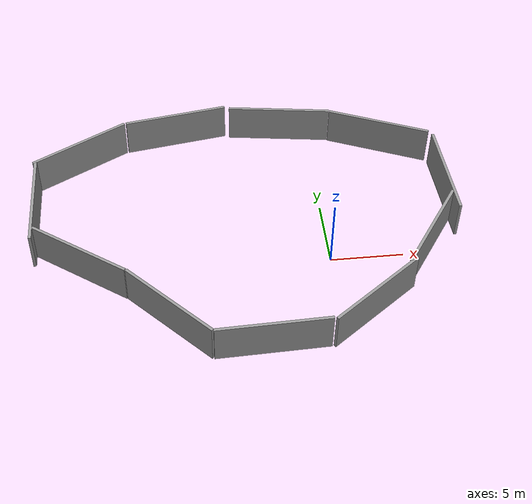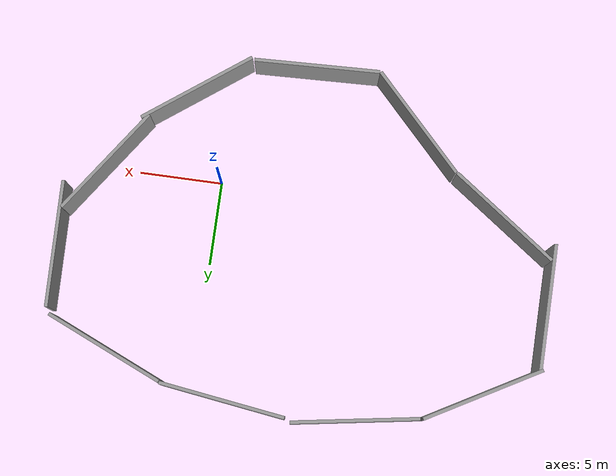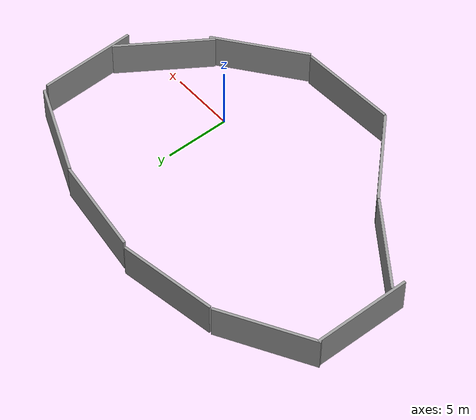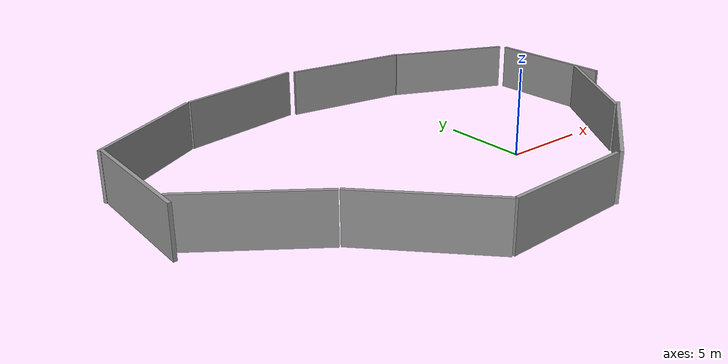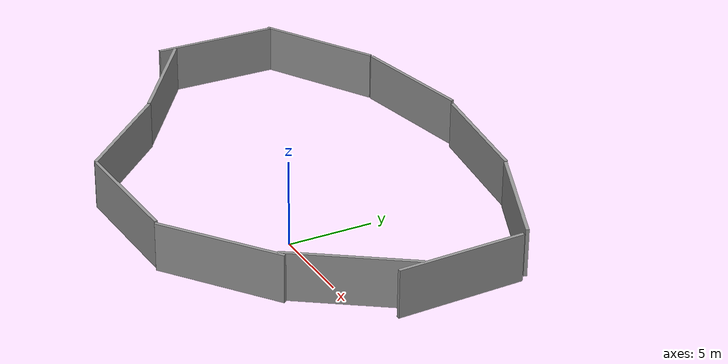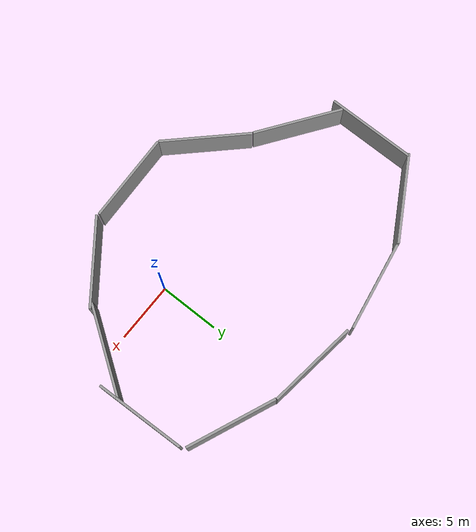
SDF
<sdf version="1.6">
 <world name="default">
  <light name="sun" type="directional">
   <pose>0 0 10 0 -0 0</pose>
   <diffuse>0.8 0.8 0.8 1</diffuse>
   <specular>0.2 0.2 0.2 1</specular>
   <attenuation>
    <range>1000</range>
    <constant>0.9</constant>
    <linear>0.01</linear>
    <quadratic>0.001</quadratic>
   </attenuation>
   <direction>-0.5 0.1 -0.9</direction>
  </light>
  <gravity>0 0 -9.8</gravity>
  <magnetic_field>6e-06 2.3e-05 -4.2e-05</magnetic_field>
  <atmosphere type="adiabatic"/>
  <physics name="default_physics" default="0" type="ode">
   <max_step_size>0.001</max_step_size>
   <real_time_factor>1</real_time_factor>
   <real_time_update_rate>1000</real_time_update_rate>
  </physics>
  <scene><ambient>0.4 0.4 0.4 1</ambient><background>0.7 0.7 0.7 1</background><shadows>1</shadows></scene>
  <audio><device>default</device></audio>
  <spherical_coordinates>
   <surface_model>EARTH_WGS84</surface_model>
   <latitude_deg>0</latitude_deg>
   <longitude_deg>0</longitude_deg>
   <elevation>0</elevation>
   <heading_deg>0</heading_deg>
  </spherical_coordinates>
  <model name="grey_wall">
   <static>1</static>
   <link name="link">
    <pose>0 0 1.4 0 -0 0</pose>
    <collision name="collision"><geometry><box><size>7.5 0.2 2.8</size></box></geometry></collision>
    <visual name="visual">
     <cast_shadows>0</cast_shadows>
     <geometry><box><size>7.5 0.2 2.8</size></box></geometry>
     <material>
      <script>
       <uri>model://grey_wall/materials/scripts</uri>
       <uri>model://grey_wall/materials/textures</uri>
       <name>vrc/grey_wall</name>
      </script>
     </material>
    </visual>
   </link>
   <pose>5.13458 10.9235 0 0 0 -0.408397</pose>
  </model>
  <model name="grey_wall_clone">
   <static>1</static>
   <link name="link">
    <pose>0 0 1.4 0 -0 0</pose>
    <collision name="collision"><geometry><box><size>7.5 0.2 2.8</size></box></geometry></collision>
    <visual name="visual">
     <cast_shadows>0</cast_shadows>
     <geometry><box><size>7.5 0.2 2.8</size></box></geometry>
     <material>
      <script>
       <uri>model://grey_wall/materials/scripts</uri>
       <uri>model://grey_wall/materials/textures</uri>
       <name>vrc/grey_wall</name>
      </script>
     </material>
    </visual>
   </link>
   <pose>8.91236 5.30749 0 0 -0 1.59951</pose>
  </model>
  <model name="grey_wall_clone_0">
   <static>1</static>
   <link name="link">
    <pose>0 0 1.4 0 -0 0</pose>
    <collision name="collision"><geometry><box><size>7.5 0.2 2.8</size></box></geometry></collision>
    <visual name="visual">
     <cast_shadows>0</cast_shadows>
     <geometry><box><size>7.5 0.2 2.8</size></box></geometry>
     <material>
      <script>
       <uri>model://grey_wall/materials/scripts</uri>
       <uri>model://grey_wall/materials/textures</uri>
       <name>vrc/grey_wall</name>
      </script>
     </material>
    </visual>
   </link>
   <pose>-2.04713 12.9833 0 0 0 -0.136142</pose>
  </model>
  <model name="grey_wall_clone_1">
   <static>1</static>
   <link name="link">
    <pose>0 0 1.4 0 -0 0</pose>
    <collision name="collision"><geometry><box><size>7.5 0.2 2.8</size></box></geometry></collision>
    <visual name="visual">
     <cast_shadows>0</cast_shadows>
     <geometry><box><size>7.5 0.2 2.8</size></box></geometry>
     <material>
      <script>
       <uri>model://grey_wall/materials/scripts</uri>
       <uri>model://grey_wall/materials/textures</uri>
       <name>vrc/grey_wall</name>
      </script>
     </material>
    </visual>
   </link>
   <pose>-9.79372 13.0874 0 0 -0 0.163929</pose>
  </model>
  <model name="grey_wall_clone_2">
   <static>1</static>
   <link name="link">
    <pose>0 0 1.4 0 -0 0</pose>
    <collision name="collision"><geometry><box><size>7.5 0.2 2.8</size></box></geometry></collision>
    <visual name="visual">
     <cast_shadows>0</cast_shadows>
     <geometry><box><size>7.5 0.2 2.8</size></box></geometry>
     <material>
      <script>
       <uri>model://grey_wall/materials/scripts</uri>
       <uri>model://grey_wall/materials/textures</uri>
       <name>vrc/grey_wall</name>
      </script>
     </material>
    </visual>
   </link>
   <pose>-16.8917 10.6178 0 0 -0 0.516606</pose>
  </model>
  <model name="grey_wall_clone_3">
   <static>1</static>
   <link name="link">
    <pose>0 0 1.4 0 -0 0</pose>
    <collision name="collision"><geometry><box><size>7.5 0.2 2.8</size></box></geometry></collision>
    <visual name="visual">
     <cast_shadows>0</cast_shadows>
     <geometry><box><size>7.5 0.2 2.8</size></box></geometry>
     <material>
      <script>
       <uri>model://grey_wall/materials/scripts</uri>
       <uri>model://grey_wall/materials/textures</uri>
       <name>vrc/grey_wall</name>
      </script>
     </material>
    </visual>
   </link>
   <pose>-20.0303 5.12673 0 0 0 -1.58296</pose>
  </model>
  <model name="grey_wall_clone_4">
   <static>1</static>
   <link name="link">
    <pose>0 0 1.4 0 -0 0</pose>
    <collision name="collision"><geometry><box><size>7.5 0.2 2.8</size></box></geometry></collision>
    <visual name="visual">
     <cast_shadows>0</cast_shadows>
     <geometry><box><size>7.5 0.2 2.8</size></box></geometry>
     <material>
      <script>
       <uri>model://grey_wall/materials/scripts</uri>
       <uri>model://grey_wall/materials/textures</uri>
       <name>vrc/grey_wall</name>
      </script>
     </material>
    </visual>
   </link>
   <pose>-16.9005 0.167877 0 0 0 -0.625419</pose>
  </model>
  <model name="grey_wall_clone_5">
   <static>1</static>
   <link name="link">
    <pose>0 0 1.4 0 -0 0</pose>
    <collision name="collision"><geometry><box><size>7.5 0.2 2.8</size></box></geometry></collision>
    <visual name="visual">
     <cast_shadows>0</cast_shadows>
     <geometry><box><size>7.5 0.2 2.8</size></box></geometry>
     <material>
      <script>
       <uri>model://grey_wall/materials/scripts</uri>
       <uri>model://grey_wall/materials/textures</uri>
       <name>vrc/grey_wall</name>
      </script>
     </material>
    </visual>
   </link>
   <pose>-11.2086 -4.76511 0 0 0 -0.811173</pose>
  </model>
  <model name="grey_wall_clone_6">
   <static>1</static>
   <link name="link">
    <pose>0 0 1.4 0 -0 0</pose>
    <collision name="collision"><geometry><box><size>7.5 0.2 2.8</size></box></geometry></collision>
    <visual name="visual">
     <cast_shadows>0</cast_shadows>
     <geometry><box><size>7.5 0.2 2.8</size></box></geometry>
     <material>
      <script>
       <uri>model://grey_wall/materials/scripts</uri>
       <uri>model://grey_wall/materials/textures</uri>
       <name>vrc/grey_wall</name>
      </script>
     </material>
    </visual>
   </link>
   <pose>-4.82211 -7.35478 0 0 -0 0.03593</pose>
  </model>
  <model name="grey_wall_clone_7">
   <static>1</static>
   <link name="link">
    <pose>0 0 1.4 0 -0 0</pose>
    <collision name="collision"><geometry><box><size>7.5 0.2 2.8</size></box></geometry></collision>
    <visual name="visual">
     <cast_shadows>0</cast_shadows>
     <geometry><box><size>7.5 0.2 2.8</size></box></geometry>
     <material>
      <script>
       <uri>model://grey_wall/materials/scripts</uri>
       <uri>model://grey_wall/materials/textures</uri>
       <name>vrc/grey_wall</name>
      </script>
     </material>
    </visual>
   </link>
   <pose>2.08479 -5.07644 0 0 -0 0.644432</pose>
  </model>
  <model name="grey_wall_clone_8">
   <static>1</static>
   <link name="link">
    <pose>0 0 1.4 0 -0 0</pose>
    <collision name="collision"><geometry><box><size>7.5 0.2 2.8</size></box></geometry></collision>
    <visual name="visual">
     <cast_shadows>0</cast_shadows>
     <geometry><box><size>7.5 0.2 2.8</size></box></geometry>
     <material>
      <script>
       <uri>model://grey_wall/materials/scripts</uri>
       <uri>model://grey_wall/materials/textures</uri>
       <name>vrc/grey_wall</name>
      </script>
     </material>
    </visual>
   </link>
   <pose>6.75834 0.057695 0 0 -0 0.967821</pose>
  </model>
 </world>
</sdf>
